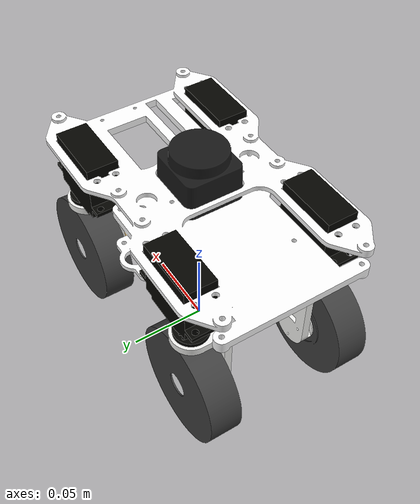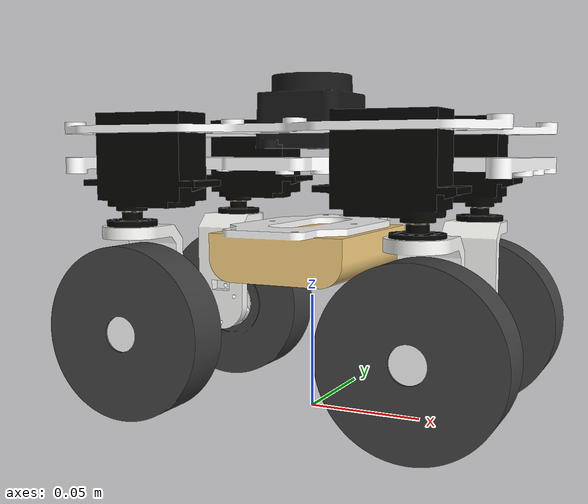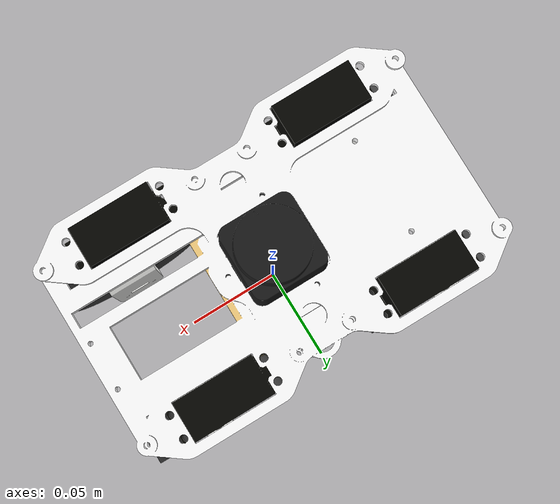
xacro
<?xml version="1.0"?>
<robot xmlns:xacro="http://www.ros.org/wiki/xacro" name="cobra">
	<xacro:property name="wheel_mass"   value="0.236"/>
	<xacro:property name="wheel_width"  value="0.02025"/>
	<xacro:property name="wheel_radius" value="0.03750"/>

	<xacro:property name="body_mass"   value="2.375"/>
	<xacro:property name="body_width"  value="0.110"/>
	<xacro:property name="body_height" value="0.150"/>
	<xacro:property name="body_length" value="0.200"/>
	<xacro:property name="body_center_z" value="0.08200"/>

	<!-- ======================== Base link (robot body) ======================== -->
	<link name="base_footprint">
		<visual>
			<origin xyz="0 0 0.08200" rpy="3.14159 3.14159 -1.5708"/>
			<geometry>
				<mesh filename="package://description/meshes/rover_base.dae" scale="0.001 0.001 0.001"/>
			</geometry>
		</visual>

		<collision>
			<origin xyz="0 0 ${body_center_z}" rpy="0 0 0"/>
			<geometry>
				<box size="${body_length} ${body_width} ${body_height}"/>
			</geometry>
		</collision>

		<inertial>
			<origin xyz="0 0 ${body_center_z}" rpy="0 0 0"/>
			<mass value="${body_mass}"/>
			<inertia
				ixx="0.008411458333333333" ixy="0" ixz="0"
				iyy="0.017614583333333333" iyz="0"
				izz="0.011736458333333333"/>
		</inertial>
	</link>

	<!-- ======================== Base scan (lidar) ======================== -->
	<link name="base_scan"/>
	<joint name="scan_joint" type="fixed">
		<parent link="base_footprint"/>
		<child link="base_scan"/>
		<origin xyz="0.0 -0.0 0.144" rpy="0 0 0"/>
	</joint>

	<!-- front left wheel -->
    <link name="front_left_servo_mount">
        <visual>
            <origin xyz="0.0 0.0 -0.04500" rpy="0.0 0.0 3.14159"/>
            <geometry>
                <mesh filename="package://description/meshes/rover_servo_mount.dae" scale="0.001 0.001 0.001"/>
            </geometry>
        </visual>
    </link>
    <joint name="front_left_servo_joint" type="revolute">
        <parent link="base_footprint"/>
        <child link="front_left_servo_mount"/>
        <origin xyz="0.062966 0.044875 0.08200" rpy="0.0 0.0 0.0"/>
        <axis xyz="0 0 1"/>
        <limit lower="-1.57" upper="1.57" effort="10" velocity="1.0"/>
    </joint>
    <link name="front_left_wheel">
        <visual>
            <origin xyz="0.0 0.0 0.0" rpy="0.0 0.0 3.14159"/>
            <geometry>
                <mesh filename="package://description/meshes/ddsm_400.dae" scale="0.001 0.001 0.001"/>
            </geometry>
        </visual>
        <collision>
            <origin xyz="0.0 0.0 0.0" rpy="1.5708 0.0 0.0"/>
            <geometry>
                <cylinder length="${wheel_width}" radius="${wheel_radius}"/>
            </geometry>
        </collision>
    </link>
    <joint name="front_left_wheel_joint" type="continuous">
        <parent link="front_left_servo_mount"/>
        <child link="front_left_wheel"/>
        <origin xyz="0.0 0.0 -0.04500" rpy="0.0 0.0 0.0"/>
        <axis xyz="0 1 0"/>
    </joint>

    <!-- back left wheel -->
    <link name="back_left_servo_mount">
        <visual>
            <origin xyz="0.0 0.0 -0.04500" rpy="0.0 0.0 3.14159"/>
            <geometry>
                <mesh filename="package://description/meshes/rover_servo_mount.dae" scale="0.001 0.001 0.001"/>
            </geometry>
        </visual>
    </link>
    <joint name="back_left_servo_joint" type="revolute">
        <parent link="base_footprint"/>
        <child link="back_left_servo_mount"/>
        <origin xyz="-0.062966 0.044875 0.08200" rpy="0.0 0.0 0.0"/>
        <axis xyz="0 0 1"/>
        <limit lower="-1.57" upper="1.57" effort="10" velocity="1.0"/>
    </joint>
    <link name="back_left_wheel">
        <visual>
            <origin xyz="0.0 0.0 0.0" rpy="0.0 0.0 3.14159"/>
            <geometry>
                <mesh filename="package://description/meshes/ddsm_400.dae" scale="0.001 0.001 0.001"/>
            </geometry>
        </visual>
        <collision>
            <origin xyz="0.0 0.0 0.0" rpy="1.5708 0.0 0.0"/>
            <geometry>
                <cylinder length="${wheel_width}" radius="${wheel_radius}"/>
            </geometry>
        </collision>
    </link>
    <joint name="back_left_wheel_joint" type="continuous">
        <parent link="back_left_servo_mount"/>
        <child link="back_left_wheel"/>
        <origin xyz="0.0 0.0 -0.04500" rpy="0.0 0.0 0.0"/>
        <axis xyz="0 1 0"/>
    </joint>

    <!-- front right wheel -->
    <link name="front_right_servo_mount">
        <visual>
            <origin xyz="0.0 0.0 -0.04500" rpy="0.0 0.0 0.0"/>
            <geometry>
                <mesh filename="package://description/meshes/rover_servo_mount.dae" scale="0.001 0.001 0.001"/>
            </geometry>
        </visual>
    </link>
    <joint name="front_right_servo_joint" type="revolute">
        <parent link="base_footprint"/>
        <child link="front_right_servo_mount"/>
        <origin xyz="0.062966 -0.044875 0.08200" rpy="0.0 0.0 0.0"/>
        <axis xyz="0 0 1"/>
        <limit lower="-1.57" upper="1.57" effort="10" velocity="1.0"/>
    </joint>
    <link name="front_right_wheel">
        <visual>
            <origin xyz="0.0 0.0 0.0" rpy="0.0 0.0 0.0"/>
            <geometry>
                <mesh filename="package://description/meshes/ddsm_400.dae" scale="0.001 0.001 0.001"/>
            </geometry>
        </visual>
        <collision>
            <origin xyz="0.0 0.0 0.0" rpy="1.5708 0.0 0.0"/>
            <geometry>
                <cylinder length="${wheel_width}" radius="${wheel_radius}"/>
            </geometry>
        </collision>
    </link>
    <joint name="front_right_wheel_joint" type="continuous">
        <parent link="front_right_servo_mount"/>
        <child link="front_right_wheel"/>
        <origin xyz="0.0 0.0 -0.04500" rpy="0.0 0.0 0.0"/>
        <axis xyz="0 1 0"/>
    </joint>

    <!-- back right wheel -->
    <link name="back_right_servo_mount">
        <visual>
            <origin xyz="0.0 0.0 -0.04500" rpy="0.0 0.0 0.0"/>
            <geometry>
                <mesh filename="package://description/meshes/rover_servo_mount.dae" scale="0.001 0.001 0.001"/>
            </geometry>
        </visual>
    </link>
    <joint name="back_right_servo_joint" type="revolute">
        <parent link="base_footprint"/>
        <child link="back_right_servo_mount"/>
        <origin xyz="-0.062966 -0.044875 0.08200" rpy="0.0 0.0 0.0"/>
        <axis xyz="0 0 1"/>
        <limit lower="-1.57" upper="1.57" effort="10" velocity="1.0"/>
    </joint>
    <link name="back_right_wheel">
        <visual>
            <origin xyz="0.0 0.0 0.0" rpy="0.0 0.0 0.0"/>
            <geometry>
                <mesh filename="package://description/meshes/ddsm_400.dae" scale="0.001 0.001 0.001"/>
            </geometry>
        </visual>
        <collision>
            <origin xyz="0.0 0.0 0.0" rpy="1.5708 0.0 0.0"/>
            <geometry>
                <cylinder length="${wheel_width}" radius="${wheel_radius}"/>
            </geometry>
        </collision>
    </link>
    <joint name="back_right_wheel_joint" type="continuous">
        <parent link="back_right_servo_mount"/>
        <child link="back_right_wheel"/>
        <origin xyz="0.0 0.0 -0.04500" rpy="0.0 0.0 0.0"/>
        <axis xyz="0 1 0"/>
    </joint>
</robot>
